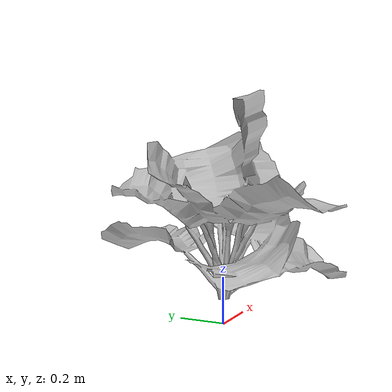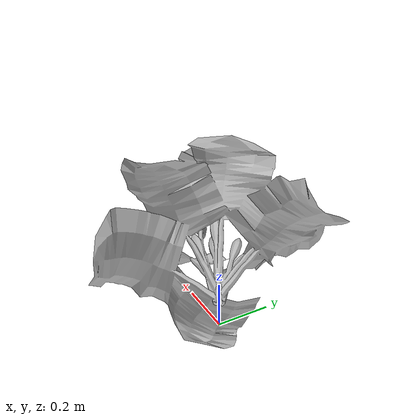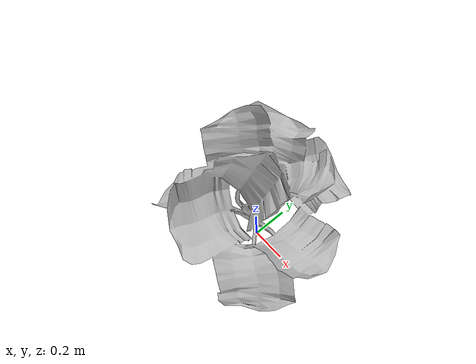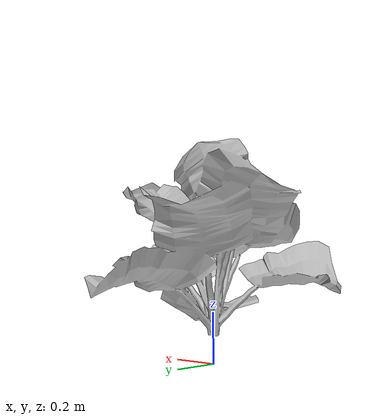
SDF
<?xml version='1.0'?>
<sdf version='1.5'>
  <model name='courgette_02'>
    <link name='link_0'>
      <pose frame=''>0 0 0.112 0 -0 0</pose>
      <inertial>
        <mass>1e-08</mass>
        <inertia>
          <ixx>0.166667</ixx>
          <ixy>0</ixy>
          <ixz>0</ixz>
          <iyy>0.166667</iyy>
          <iyz>0</iyz>
          <izz>0.166667</izz>
        </inertia>
        <pose frame=''>0 0 0 0 -0 0</pose>
      </inertial>
      <self_collide>0</self_collide>
      <kinematic>0</kinematic>
      <gravity>1</gravity>
      <visual name='visual'>
        <pose frame=''>0 0 0 0 -0 0</pose>
        <geometry>
          <mesh>
            <uri>model://courgette_02/mesh/courgette_02.dae</uri>
            <scale>3 3 3</scale>
          </mesh>
        </geometry>
      </visual>
    </link>
    <static>1</static>
    <allow_auto_disable>1</allow_auto_disable>
  </model>
</sdf>
